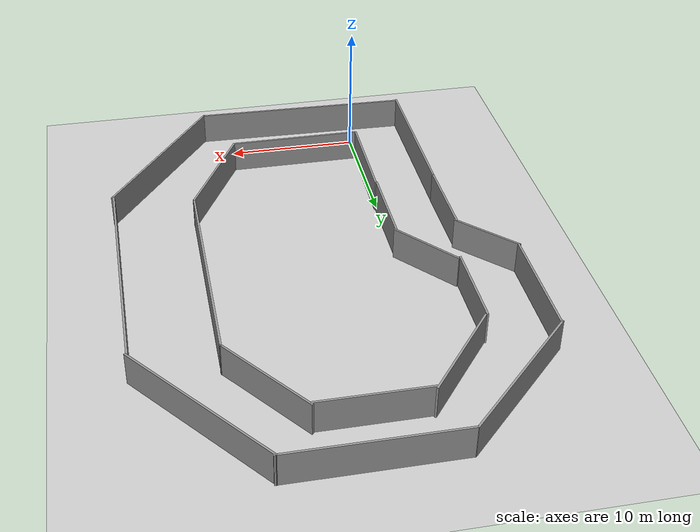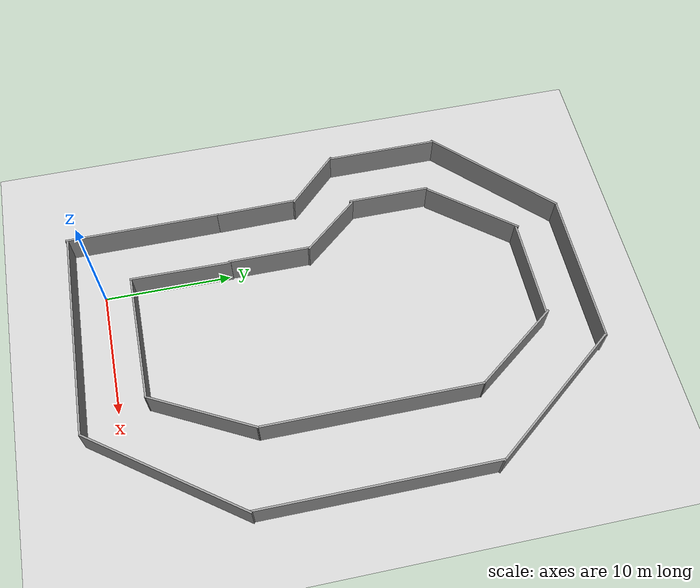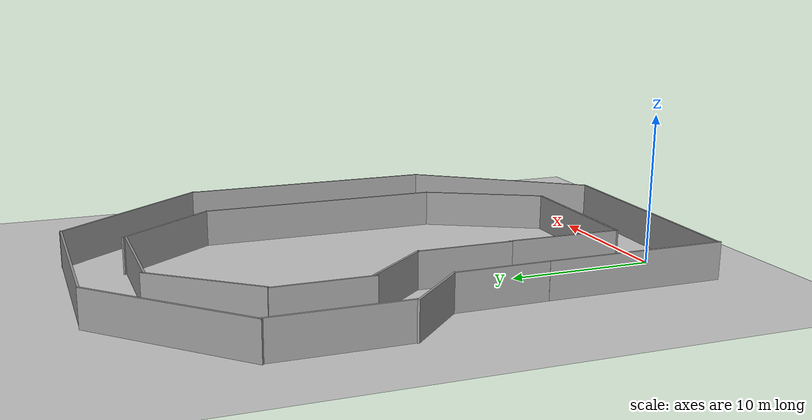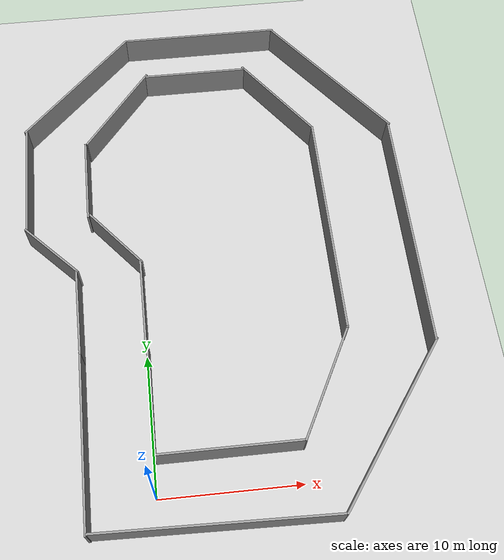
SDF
<sdf version="1.6">
 <world name="default">
  <light name="sun" type="directional">
   <pose>0 0 10 0 -0 0</pose>
   <diffuse>0.8 0.8 0.8 1</diffuse>
   <specular>0.1 0.1 0.1 1</specular>
   <attenuation>
    <range>1000</range>
    <constant>0.9</constant>
    <linear>0.01</linear>
    <quadratic>0.001</quadratic>
   </attenuation>
   <direction>-0.5 0.5 -1</direction>
  </light>
  <model name="ground_plane">
   <static>1</static>
   <link name="link">
    <collision name="collision">
     <geometry><plane><normal>0 0 1</normal><size>100 100</size></plane></geometry>
     <surface><friction><ode><mu>100</mu><mu2>50</mu2></ode></friction></surface>
    </collision>
    <visual name="visual">
     <cast_shadows>0</cast_shadows>
     <geometry><plane><normal>0 0 1</normal><size>100 100</size></plane></geometry>
     <material>
      <script><uri>file://media/materials/scripts/gazebo.material</uri><name>Gazebo/Grey</name></script>
     </material>
    </visual>
   </link>
  </model>
  <gravity>0 0 -9.8</gravity>
  <magnetic_field>6e-06 2.3e-05 -4.2e-05</magnetic_field>
  <atmosphere type="adiabatic"/>
  <physics name="default_physics" default="0" type="ode">
   <max_step_size>0.001</max_step_size>
   <real_time_factor>1</real_time_factor>
   <real_time_update_rate>1000</real_time_update_rate>
  </physics>
  <scene><ambient>0.4 0.4 0.4 1</ambient><background>0.7 0.7 0.7 1</background><shadows>1</shadows></scene>
  <spherical_coordinates>
   <surface_model>EARTH_WGS84</surface_model>
   <latitude_deg>0</latitude_deg>
   <longitude_deg>0</longitude_deg>
   <elevation>0</elevation>
   <heading_deg>0</heading_deg>
  </spherical_coordinates>
  <model name="simple_circle_track">
   <pose>6.01953 17.181 0 0 -0 0</pose>
   <link name="Wall_10">
    <collision name="Wall_10_Collision">
     <geometry><box><size>8.0533 0.15 2.5</size></box></geometry>
     <pose>0 0 1.25 0 -0 0</pose>
    </collision>
    <visual name="Wall_10_Visual">
     <pose>0 0 1.25 0 -0 0</pose>
     <geometry><box><size>8.0533 0.15 2.5</size></box></geometry>
     <material>
      <script><uri>file://media/materials/scripts/gazebo.material</uri><name>Gazebo/Grey</name></script>
      <ambient>1 1 1 1</ambient>
     </material>
    </visual>
    <pose>-6.9537 12.9645 0 0 -0 0.8927</pose>
   </link>
   <link name="Wall_11">
    <collision name="Wall_11_Collision">
     <geometry><box><size>8 0.15 2.5</size></box></geometry>
     <pose>0 0 1.25 0 -0 0</pose>
    </collision>
    <visual name="Wall_11_Visual">
     <pose>0 0 1.25 0 -0 0</pose>
     <geometry><box><size>8 0.15 2.5</size></box></geometry>
     <material>
      <script><uri>file://media/materials/scripts/gazebo.material</uri><name>Gazebo/Grey</name></script>
      <ambient>1 1 1 1</ambient>
     </material>
    </visual>
    <pose>-0.549785 15.8823 0 0 -0 0</pose>
   </link>
   <link name="Wall_12">
    <collision name="Wall_12_Collision">
     <geometry><box><size>8.12029 0.15 2.5</size></box></geometry>
     <pose>0 0 1.25 0 -0 0</pose>
    </collision>
    <visual name="Wall_12_Visual">
     <pose>0 0 1.25 0 -0 0</pose>
     <geometry><box><size>8.12029 0.15 2.5</size></box></geometry>
     <material>
      <script><uri>file://media/materials/scripts/gazebo.material</uri><name>Gazebo/Grey</name></script>
      <ambient>1 1 1 1</ambient>
     </material>
    </visual>
    <pose>5.76574 12.8534 0 0 0 -0.92747</pose>
   </link>
   <link name="Wall_13">
    <collision name="Wall_13_Collision">
     <geometry><box><size>17 0.15 2.5</size></box></geometry>
     <pose>0 0 1.25 0 -0 0</pose>
    </collision>
    <visual name="Wall_13_Visual">
     <pose>0 0 1.25 0 -0 0</pose>
     <geometry><box><size>17 0.15 2.5</size></box></geometry>
     <material>
      <script><uri>file://media/materials/scripts/gazebo.material</uri><name>Gazebo/Grey</name></script>
      <ambient>1 1 1 1</ambient>
     </material>
    </visual>
    <pose>8.15627 1.23982 0 0 0 -1.5708</pose>
   </link>
   <link name="Wall_16">
    <collision name="Wall_16_Collision">
     <geometry><box><size>6.41011 0.15 2.5</size></box></geometry>
     <pose>0 0 1.25 0 -0 0</pose>
    </collision>
    <visual name="Wall_16_Visual">
     <pose>0 0 1.25 0 -0 0</pose>
     <geometry><box><size>6.41011 0.15 2.5</size></box></geometry>
     <material>
      <script><uri>file://media/materials/scripts/gazebo.material</uri><name>Gazebo/Grey</name></script>
      <ambient>1 1 1 1</ambient>
     </material>
    </visual>
    <pose>-10.5599 -4.13279 0 0 -0 1.58354</pose>
   </link>
   <link name="Wall_17">
    <collision name="Wall_17_Collision">
     <geometry><box><size>5.41958 0.15 2.5</size></box></geometry>
     <pose>0 0 1.25 0 -0 0</pose>
    </collision>
    <visual name="Wall_17_Visual">
     <pose>0 0 1.25 0 -0 0</pose>
     <geometry><box><size>5.41958 0.15 2.5</size></box></geometry>
     <material>
      <script><uri>file://media/materials/scripts/gazebo.material</uri><name>Gazebo/Grey</name></script>
      <ambient>1 1 1 1</ambient>
     </material>
    </visual>
    <pose>-12.363 0.879928 0 0 -0 2.34549</pose>
   </link>
   <link name="Wall_20">
    <collision name="Wall_20_Collision">
     <geometry><box><size>8.8404 0.15 2.5</size></box></geometry>
     <pose>0 0 1.25 0 -0 0</pose>
    </collision>
    <visual name="Wall_20_Visual">
     <pose>0 0 1.25 0 -0 0</pose>
     <geometry><box><size>8.8404 0.15 2.5</size></box></geometry>
     <material>
      <script><uri>file://media/materials/scripts/gazebo.material</uri><name>Gazebo/Grey</name></script>
      <ambient>1 1 1 1</ambient>
     </material>
    </visual>
    <pose>-14.1263 7.10805 0 0 -0 1.5708</pose>
   </link>
   <link name="Wall_21">
    <collision name="Wall_21_Collision">
     <geometry><box><size>11.83 0.15 2.5</size></box></geometry>
     <pose>0 0 1.25 0 -0 0</pose>
    </collision>
    <visual name="Wall_21_Visual">
     <pose>0 0 1.25 0 -0 0</pose>
     <geometry><box><size>11.83 0.15 2.5</size></box></geometry>
     <material>
      <script><uri>file://media/materials/scripts/gazebo.material</uri><name>Gazebo/Grey</name></script>
      <ambient>1 1 1 1</ambient>
     </material>
    </visual>
    <pose>-10.0766 15.5827 0 0 -0 0.785398</pose>
   </link>
   <link name="Wall_22">
    <collision name="Wall_22_Collision">
     <geometry><box><size>12.25 0.15 2.5</size></box></geometry>
     <pose>0 0 1.25 0 -0 0</pose>
    </collision>
    <visual name="Wall_22_Visual">
     <pose>0 0 1.25 0 -0 0</pose>
     <geometry><box><size>12.25 0.15 2.5</size></box></geometry>
     <material>
      <script><uri>file://media/materials/scripts/gazebo.material</uri><name>Gazebo/Grey</name></script>
      <ambient>1 1 1 1</ambient>
     </material>
    </visual>
    <pose>0.182715 19.7122 0 0 -0 0</pose>
   </link>
   <link name="Wall_23">
    <collision name="Wall_23_Collision">
     <geometry><box><size>13.2158 0.15 2.5</size></box></geometry>
     <pose>0 0 1.25 0 -0 0</pose>
    </collision>
    <visual name="Wall_23_Visual">
     <pose>0 0 1.25 0 -0 0</pose>
     <geometry><box><size>13.2158 0.15 2.5</size></box></geometry>
     <material>
      <script><uri>file://media/materials/scripts/gazebo.material</uri><name>Gazebo/Grey</name></script>
      <ambient>1 1 1 1</ambient>
     </material>
    </visual>
    <pose>10.1799 14.5681 0 0 0 -0.906619</pose>
   </link>
   <link name="Wall_24">
    <collision name="Wall_24_Collision">
     <geometry><box><size>18.2401 0.15 2.5</size></box></geometry>
     <pose>0 0 1.25 0 -0 0</pose>
    </collision>
    <visual name="Wall_24_Visual">
     <pose>0 0 1.25 0 -0 0</pose>
     <geometry><box><size>18.2401 0.15 2.5</size></box></geometry>
     <material>
      <script><uri>file://media/materials/scripts/gazebo.material</uri><name>Gazebo/Grey</name></script>
      <ambient>1 1 1 1</ambient>
     </material>
    </visual>
    <pose>14.1271 0.379184 0 0 0 -1.5708</pose>
   </link>
   <link name="Wall_25">
    <collision name="Wall_25_Collision">
     <geometry><box><size>13.848 0.15 2.5</size></box></geometry>
     <pose>0 0 1.25 0 -0 0</pose>
    </collision>
    <visual name="Wall_25_Visual">
     <pose>0 0 1.25 0 -0 0</pose>
     <geometry><box><size>13.848 0.15 2.5</size></box></geometry>
     <material>
      <script><uri>file://media/materials/scripts/gazebo.material</uri><name>Gazebo/Grey</name></script>
      <ambient>1 1 1 1</ambient>
     </material>
    </visual>
    <pose>10.1578 -14.1895 0 0 0 -2.20332</pose>
   </link>
   <link name="Wall_28">
    <collision name="Wall_28_Collision">
     <geometry><box><size>16.6326 0.15 2.5</size></box></geometry>
     <pose>0 0 1.25 0 -0 0</pose>
    </collision>
    <visual name="Wall_28_Visual">
     <pose>0 0 1.25 0 -0 0</pose>
     <geometry><box><size>16.6326 0.15 2.5</size></box></geometry>
     <material>
      <script><uri>file://media/materials/scripts/gazebo.material</uri><name>Gazebo/Grey</name></script>
      <ambient>1 1 1 1</ambient>
     </material>
    </visual>
    <pose>-2.20986 -19.514 0 0 -0 3.11738</pose>
   </link>
   <link name="Wall_29">
    <collision name="Wall_29_Collision">
     <geometry><box><size>12.25 0.15 2.5</size></box></geometry>
     <pose>0 0 1.25 0 -0 0</pose>
    </collision>
    <visual name="Wall_29_Visual">
     <pose>0 0 1.25 0 -0 0</pose>
     <geometry><box><size>12.25 0.15 2.5</size></box></geometry>
     <material>
      <script><uri>file://media/materials/scripts/gazebo.material</uri><name>Gazebo/Grey</name></script>
      <ambient>1 1 1 1</ambient>
     </material>
    </visual>
    <pose>-10.5286 -13.3443 0 0 -0 1.5708</pose>
   </link>
   <link name="Wall_31">
    <collision name="Wall_31_Collision">
     <geometry><box><size>7.91001 0.15 2.5</size></box></geometry>
     <pose>0 0 1.25 0 -0 0</pose>
    </collision>
    <visual name="Wall_31_Visual">
     <pose>0 0 1.25 0 -0 0</pose>
     <geometry><box><size>7.91001 0.15 2.5</size></box></geometry>
     <material>
      <script><uri>file://media/materials/scripts/gazebo.material</uri><name>Gazebo/Grey</name></script>
      <ambient>1 1 1 1</ambient>
     </material>
    </visual>
    <pose>-5.91172 -10.892 0 0 0 -1.58108</pose>
   </link>
   <link name="Wall_32">
    <collision name="Wall_32_Collision">
     <geometry><box><size>10.25 0.15 2.5</size></box></geometry>
     <pose>0 0 1.25 0 -0 0</pose>
    </collision>
    <visual name="Wall_32_Visual">
     <pose>0 0 1.25 0 -0 0</pose>
     <geometry><box><size>10.25 0.15 2.5</size></box></geometry>
     <material>
      <script><uri>file://media/materials/scripts/gazebo.material</uri><name>Gazebo/Grey</name></script>
      <ambient>1 1 1 1</ambient>
     </material>
    </visual>
    <pose>-0.901624 -14.7718 0 0 -0 0</pose>
   </link>
   <link name="Wall_33">
    <collision name="Wall_33_Collision">
     <geometry><box><size>8.73017 0.15 2.5</size></box></geometry>
     <pose>0 0 1.25 0 -0 0</pose>
    </collision>
    <visual name="Wall_33_Visual">
     <pose>0 0 1.25 0 -0 0</pose>
     <geometry><box><size>8.73017 0.15 2.5</size></box></geometry>
     <material>
      <script><uri>file://media/materials/scripts/gazebo.material</uri><name>Gazebo/Grey</name></script>
      <ambient>1 1 1 1</ambient>
     </material>
    </visual>
    <pose>6.15232 -10.9785 0 0 -0 1.08478</pose>
   </link>
   <link name="Wall_7">
    <collision name="Wall_7_Collision">
     <geometry><box><size>6.5 0.15 2.5</size></box></geometry>
     <pose>0 0 1.25 0 -0 0</pose>
    </collision>
    <visual name="Wall_7_Visual">
     <pose>0 0 1.25 0 -0 0</pose>
     <geometry><box><size>6.5 0.15 2.5</size></box></geometry>
     <material>
      <script><uri>file://media/materials/scripts/gazebo.material</uri><name>Gazebo/Grey</name></script>
      <ambient>1 1 1 1</ambient>
     </material>
    </visual>
    <pose>-5.95162 -3.83715 0 0 -0 1.5708</pose>
   </link>
   <link name="Wall_8">
    <collision name="Wall_8_Collision">
     <geometry><box><size>5.65568 0.15 2.5</size></box></geometry>
     <pose>0 0 1.25 0 -0 0</pose>
    </collision>
    <visual name="Wall_8_Visual">
     <pose>0 0 1.25 0 -0 0</pose>
     <geometry><box><size>5.65568 0.15 2.5</size></box></geometry>
     <material>
      <script><uri>file://media/materials/scripts/gazebo.material</uri><name>Gazebo/Grey</name></script>
      <ambient>1 1 1 1</ambient>
     </material>
    </visual>
    <pose>-7.65222 1.43745 0 0 -0 2.27411</pose>
   </link>
   <link name="Wall_9">
    <collision name="Wall_9_Collision">
     <geometry><box><size>6.5 0.15 2.5</size></box></geometry>
     <pose>0 0 1.25 0 -0 0</pose>
    </collision>
    <visual name="Wall_9_Visual">
     <pose>0 0 1.25 0 -0 0</pose>
     <geometry><box><size>6.5 0.15 2.5</size></box></geometry>
     <material>
      <script><uri>file://media/materials/scripts/gazebo.material</uri><name>Gazebo/Grey</name></script>
      <ambient>1 1 1 1</ambient>
     </material>
    </visual>
    <pose>-9.59222 6.63225 0 0 -0 1.5708</pose>
   </link>
   <static>1</static>
  </model>
 </world>
</sdf>
